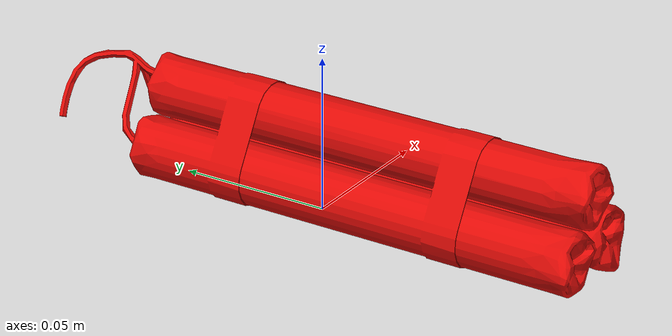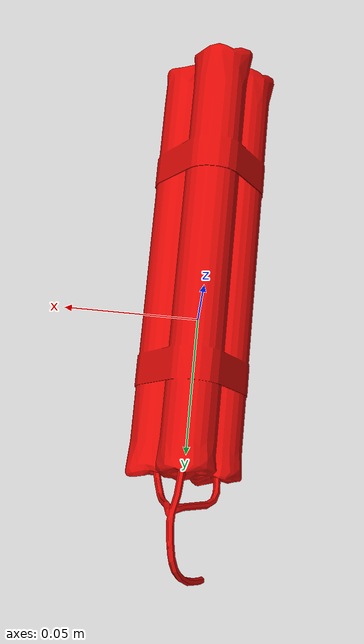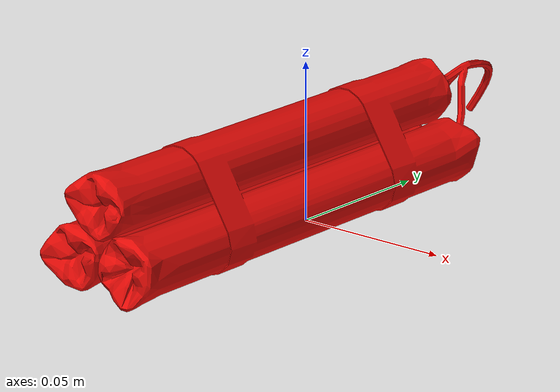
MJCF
<mujoco model="custom_obvious_mesh_turbosquid_dynamite">
  <asset>
    <mesh name="visual_mesh" file="turbosquid_dynamite.obj" />
  </asset>
  <worldbody>
    <body>
      <body name="object">
        <geom conaffinity="0" contype="0" group="1" mesh="visual_mesh" rgba="0.88 0.04 0.025 1" type="mesh" />

        <geom
          density="100"
          friction="0.95 0.3 0.1"
          group="0"
          pos="0.0000 0.0000 0.0600"
          rgba="0.8 0.8 0.8 0.0"
          size="0.1050 0.0700 0.0600"
          type="box"
        />
        <geom
          name="reg_bbox"
          conaffinity="0"
          contype="0"
          group="3"
          pos="0.0000 0.0000 0.0600"
          rgba="0 0 0 0"
          size="0.1050 0.0700 0.0600"
          type="box"
        />
      </body>
      <site rgba="0 0 0 0" size="0.005" pos="0 0 0" name="bottom_site" />
      <site rgba="0 0 0 0" size="0.005" pos="0 0 0.1200" name="top_site" />
      <site rgba="0 0 0 0" size="0.005" pos="0.1050 0.1050 0" name="horizontal_radius_site" />
    </body>
  </worldbody>
</mujoco>
